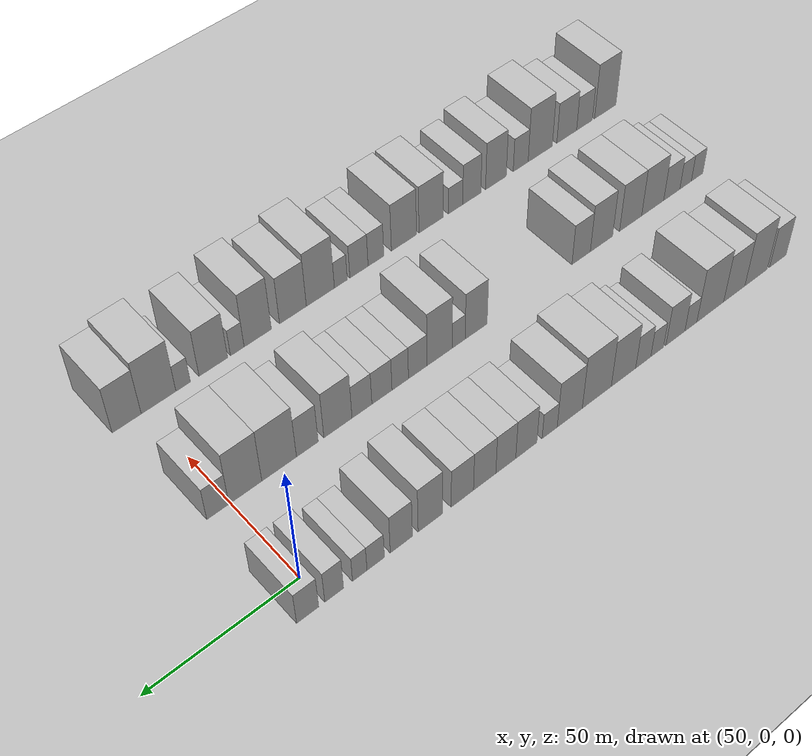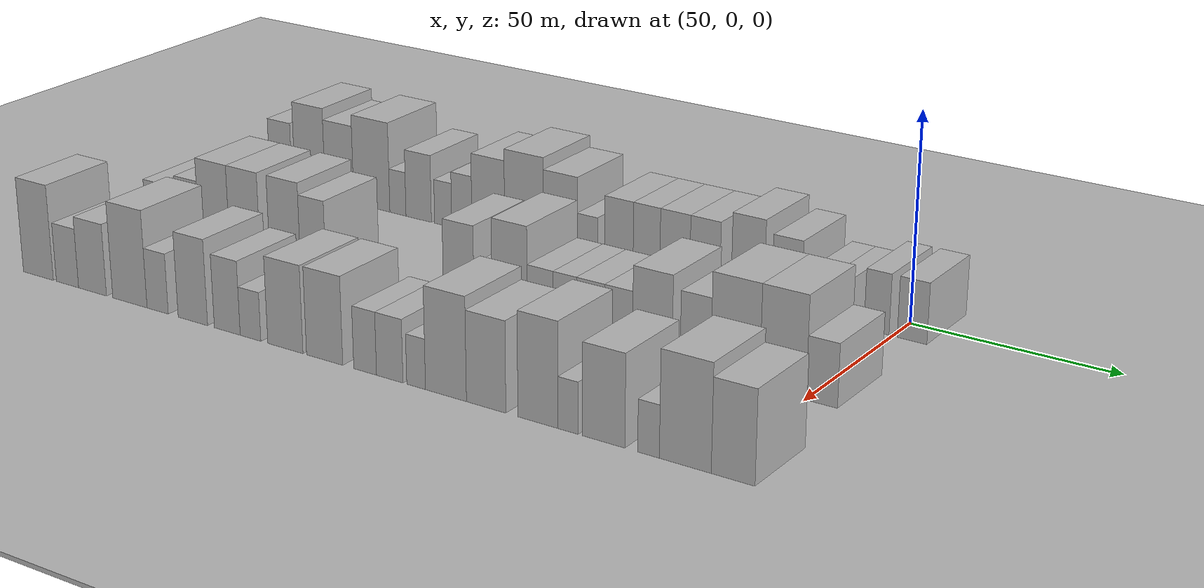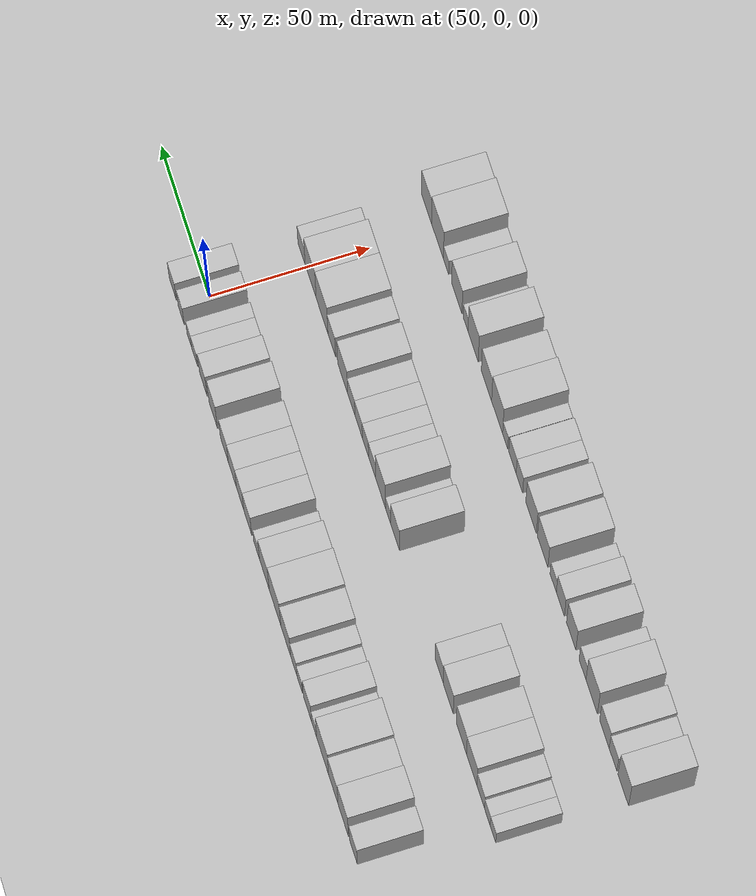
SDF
<sdf version="1.6">
 <world name="default">
  <include><name>ground_plane_1</name><uri>model://HANNAS_ground_plane</uri></include>
  <include>
   <name>ground_plane_2</name>
   <uri>model://HANNAS_ground_plane</uri>
   <pose>100 0 0  0 0 0</pose>
  </include>
  <model name="building_19">
   <static>1</static>
   <pose>50.0000 -175.2739 0 0.000000 0.000000 0.000000</pose>
   <link name="link">
    <pose>0 0 9.00 0 0 0</pose>
    <collision name="collision"><geometry><box><size>20.0000 7.4967 18.0000</size></box></geometry></collision>
    <visual name="visual">
     <cast_shadows>0</cast_shadows>
     <geometry><box><size>20.0000 7.4967 18.0000</size></box></geometry>
     <material>
      <script>
       <uri>model://HANNAS_wall/materials/scripts</uri>
       <uri>model://HANNAS_wall/materials/textures</uri>
       <name>vrc/HANNAS_wall</name>
      </script>
     </material>
    </visual>
   </link>
  </model>
  <model name="building_20">
   <static>1</static>
   <pose>50.0000 -165.5309 0 0.000000 0.000000 0.000000</pose>
   <link name="link">
    <pose>0 0 12.00 0 0 0</pose>
    <collision name="collision"><geometry><box><size>20.0000 9.9893 24.0000</size></box></geometry></collision>
    <visual name="visual">
     <cast_shadows>0</cast_shadows>
     <geometry><box><size>20.0000 9.9893 24.0000</size></box></geometry>
     <material>
      <script>
       <uri>model://HANNAS_wall/materials/scripts</uri>
       <uri>model://HANNAS_wall/materials/textures</uri>
       <name>vrc/HANNAS_wall</name>
      </script>
     </material>
    </visual>
   </link>
  </model>
  <model name="building_21">
   <static>1</static>
   <pose>50.0000 -155.8744 0 0.000000 0.000000 0.000000</pose>
   <link name="link">
    <pose>0 0 10.50 0 0 0</pose>
    <collision name="collision"><geometry><box><size>20.0000 9.3238 21.0000</size></box></geometry></collision>
    <visual name="visual">
     <cast_shadows>0</cast_shadows>
     <geometry><box><size>20.0000 9.3238 21.0000</size></box></geometry>
     <material>
      <script>
       <uri>model://HANNAS_wall/materials/scripts</uri>
       <uri>model://HANNAS_wall/materials/textures</uri>
       <name>vrc/HANNAS_wall</name>
      </script>
     </material>
    </visual>
   </link>
  </model>
  <model name="building_22">
   <static>1</static>
   <pose>50.0000 -145.4319 0 0.000000 0.000000 0.000000</pose>
   <link name="link">
    <pose>0 0 12.00 0 0 0</pose>
    <collision name="collision"><geometry><box><size>20.0000 11.5612 24.0000</size></box></geometry></collision>
    <visual name="visual">
     <cast_shadows>0</cast_shadows>
     <geometry><box><size>20.0000 11.5612 24.0000</size></box></geometry>
     <material>
      <script>
       <uri>model://HANNAS_wall/materials/scripts</uri>
       <uri>model://HANNAS_wall/materials/textures</uri>
       <name>vrc/HANNAS_wall</name>
      </script>
     </material>
    </visual>
   </link>
  </model>
  <model name="building_23">
   <static>1</static>
   <pose>50.0000 -137.0996 0 0.000000 0.000000 0.000000</pose>
   <link name="link">
    <pose>0 0 6.00 0 0 0</pose>
    <collision name="collision"><geometry><box><size>20.0000 5.1034 12.0000</size></box></geometry></collision>
    <visual name="visual">
     <cast_shadows>0</cast_shadows>
     <geometry><box><size>20.0000 5.1034 12.0000</size></box></geometry>
     <material>
      <script>
       <uri>model://HANNAS_wall/materials/scripts</uri>
       <uri>model://HANNAS_wall/materials/textures</uri>
       <name>vrc/HANNAS_wall</name>
      </script>
     </material>
    </visual>
   </link>
  </model>
  <model name="building_24">
   <static>1</static>
   <pose>50.0000 -130.5739 0 0.000000 0.000000 0.000000</pose>
   <link name="link">
    <pose>0 0 9.00 0 0 0</pose>
    <collision name="collision"><geometry><box><size>20.0000 7.9480 18.0000</size></box></geometry></collision>
    <visual name="visual">
     <cast_shadows>0</cast_shadows>
     <geometry><box><size>20.0000 7.9480 18.0000</size></box></geometry>
     <material>
      <script>
       <uri>model://HANNAS_wall/materials/scripts</uri>
       <uri>model://HANNAS_wall/materials/textures</uri>
       <name>vrc/HANNAS_wall</name>
      </script>
     </material>
    </visual>
   </link>
  </model>
  <model name="building_25">
   <static>1</static>
   <pose>50.0000 -122.9616 0 0.000000 0.000000 0.000000</pose>
   <link name="link">
    <pose>0 0 6.00 0 0 0</pose>
    <collision name="collision"><geometry><box><size>20.0000 5.2764 12.0000</size></box></geometry></collision>
    <visual name="visual">
     <cast_shadows>0</cast_shadows>
     <geometry><box><size>20.0000 5.2764 12.0000</size></box></geometry>
     <material>
      <script>
       <uri>model://HANNAS_wall/materials/scripts</uri>
       <uri>model://HANNAS_wall/materials/textures</uri>
       <name>vrc/HANNAS_wall</name>
      </script>
     </material>
    </visual>
   </link>
  </model>
  <model name="building_26">
   <static>1</static>
   <pose>50.0000 -117.2338 0 0.000000 0.000000 0.000000</pose>
   <link name="link">
    <pose>0 0 7.50 0 0 0</pose>
    <collision name="collision"><geometry><box><size>20.0000 6.1794 15.0000</size></box></geometry></collision>
    <visual name="visual">
     <cast_shadows>0</cast_shadows>
     <geometry><box><size>20.0000 6.1794 15.0000</size></box></geometry>
     <material>
      <script>
       <uri>model://HANNAS_wall/materials/scripts</uri>
       <uri>model://HANNAS_wall/materials/textures</uri>
       <name>vrc/HANNAS_wall</name>
      </script>
     </material>
    </visual>
   </link>
  </model>
  <model name="building_27">
   <static>1</static>
   <pose>50.0000 -109.2089 0 0.000000 0.000000 0.000000</pose>
   <link name="link">
    <pose>0 0 10.50 0 0 0</pose>
    <collision name="collision"><geometry><box><size>20.0000 9.8703 21.0000</size></box></geometry></collision>
    <visual name="visual">
     <cast_shadows>0</cast_shadows>
     <geometry><box><size>20.0000 9.8703 21.0000</size></box></geometry>
     <material>
      <script>
       <uri>model://HANNAS_wall/materials/scripts</uri>
       <uri>model://HANNAS_wall/materials/textures</uri>
       <name>vrc/HANNAS_wall</name>
      </script>
     </material>
    </visual>
   </link>
  </model>
  <model name="building_28">
   <static>1</static>
   <pose>50.0000 -98.5389 0 0.000000 0.000000 0.000000</pose>
   <link name="link">
    <pose>0 0 12.00 0 0 0</pose>
    <collision name="collision"><geometry><box><size>20.0000 11.4696 24.0000</size></box></geometry></collision>
    <visual name="visual">
     <cast_shadows>0</cast_shadows>
     <geometry><box><size>20.0000 11.4696 24.0000</size></box></geometry>
     <material>
      <script>
       <uri>model://HANNAS_wall/materials/scripts</uri>
       <uri>model://HANNAS_wall/materials/textures</uri>
       <name>vrc/HANNAS_wall</name>
      </script>
     </material>
    </visual>
   </link>
  </model>
  <model name="building_29">
   <static>1</static>
   <pose>50.0000 -87.9355 0 0.000000 0.000000 0.000000</pose>
   <link name="link">
    <pose>0 0 10.50 0 0 0</pose>
    <collision name="collision"><geometry><box><size>20.0000 9.7372 21.0000</size></box></geometry></collision>
    <visual name="visual">
     <cast_shadows>0</cast_shadows>
     <geometry><box><size>20.0000 9.7372 21.0000</size></box></geometry>
     <material>
      <script>
       <uri>model://HANNAS_wall/materials/scripts</uri>
       <uri>model://HANNAS_wall/materials/textures</uri>
       <name>vrc/HANNAS_wall</name>
      </script>
     </material>
    </visual>
   </link>
  </model>
  <model name="building_30">
   <static>1</static>
   <pose>50.0000 -80.1700 0 0.000000 0.000000 0.000000</pose>
   <link name="link">
    <pose>0 0 6.00 0 0 0</pose>
    <collision name="collision"><geometry><box><size>20.0000 5.7939 12.0000</size></box></geometry></collision>
    <visual name="visual">
     <cast_shadows>0</cast_shadows>
     <geometry><box><size>20.0000 5.7939 12.0000</size></box></geometry>
     <material>
      <script>
       <uri>model://HANNAS_wall/materials/scripts</uri>
       <uri>model://HANNAS_wall/materials/textures</uri>
       <name>vrc/HANNAS_wall</name>
      </script>
     </material>
    </visual>
   </link>
  </model>
  <model name="building_31">
   <static>1</static>
   <pose>50.0000 -71.2959 0 0.000000 0.000000 0.000000</pose>
   <link name="link">
    <pose>0 0 9.00 0 0 0</pose>
    <collision name="collision"><geometry><box><size>20.0000 7.9543 18.0000</size></box></geometry></collision>
    <visual name="visual">
     <cast_shadows>0</cast_shadows>
     <geometry><box><size>20.0000 7.9543 18.0000</size></box></geometry>
     <material>
      <script>
       <uri>model://HANNAS_wall/materials/scripts</uri>
       <uri>model://HANNAS_wall/materials/textures</uri>
       <name>vrc/HANNAS_wall</name>
      </script>
     </material>
    </visual>
   </link>
  </model>
  <model name="building_32">
   <static>1</static>
   <pose>50.0000 -63.6211 0 0.000000 0.000000 0.000000</pose>
   <link name="link">
    <pose>0 0 9.00 0 0 0</pose>
    <collision name="collision"><geometry><box><size>20.0000 7.3951 18.0000</size></box></geometry></collision>
    <visual name="visual">
     <cast_shadows>0</cast_shadows>
     <geometry><box><size>20.0000 7.3951 18.0000</size></box></geometry>
     <material>
      <script>
       <uri>model://HANNAS_wall/materials/scripts</uri>
       <uri>model://HANNAS_wall/materials/textures</uri>
       <name>vrc/HANNAS_wall</name>
      </script>
     </material>
    </visual>
   </link>
  </model>
  <model name="building_33">
   <static>1</static>
   <pose>50.0000 -55.8472 0 0.000000 0.000000 0.000000</pose>
   <link name="link">
    <pose>0 0 9.00 0 0 0</pose>
    <collision name="collision"><geometry><box><size>20.0000 8.1526 18.0000</size></box></geometry></collision>
    <visual name="visual">
     <cast_shadows>0</cast_shadows>
     <geometry><box><size>20.0000 8.1526 18.0000</size></box></geometry>
     <material>
      <script>
       <uri>model://HANNAS_wall/materials/scripts</uri>
       <uri>model://HANNAS_wall/materials/textures</uri>
       <name>vrc/HANNAS_wall</name>
      </script>
     </material>
    </visual>
   </link>
  </model>
  <model name="building_34">
   <static>1</static>
   <pose>50.0000 -47.7403 0 0.000000 0.000000 0.000000</pose>
   <link name="link">
    <pose>0 0 9.00 0 0 0</pose>
    <collision name="collision"><geometry><box><size>20.0000 8.0612 18.0000</size></box></geometry></collision>
    <visual name="visual">
     <cast_shadows>0</cast_shadows>
     <geometry><box><size>20.0000 8.0612 18.0000</size></box></geometry>
     <material>
      <script>
       <uri>model://HANNAS_wall/materials/scripts</uri>
       <uri>model://HANNAS_wall/materials/textures</uri>
       <name>vrc/HANNAS_wall</name>
      </script>
     </material>
    </visual>
   </link>
  </model>
  <model name="building_35">
   <static>1</static>
   <pose>50.0000 -36.3752 0 0.000000 0.000000 0.000000</pose>
   <link name="link">
    <pose>0 0 10.50 0 0 0</pose>
    <collision name="collision"><geometry><box><size>20.0000 8.6689 21.0000</size></box></geometry></collision>
    <visual name="visual">
     <cast_shadows>0</cast_shadows>
     <geometry><box><size>20.0000 8.6689 21.0000</size></box></geometry>
     <material>
      <script>
       <uri>model://HANNAS_wall/materials/scripts</uri>
       <uri>model://HANNAS_wall/materials/textures</uri>
       <name>vrc/HANNAS_wall</name>
      </script>
     </material>
    </visual>
   </link>
  </model>
  <model name="building_36">
   <static>1</static>
   <pose>50.0000 -26.2224 0 0.000000 0.000000 0.000000</pose>
   <link name="link">
    <pose>0 0 9.00 0 0 0</pose>
    <collision name="collision"><geometry><box><size>20.0000 7.6368 18.0000</size></box></geometry></collision>
    <visual name="visual">
     <cast_shadows>0</cast_shadows>
     <geometry><box><size>20.0000 7.6368 18.0000</size></box></geometry>
     <material>
      <script>
       <uri>model://HANNAS_wall/materials/scripts</uri>
       <uri>model://HANNAS_wall/materials/textures</uri>
       <name>vrc/HANNAS_wall</name>
      </script>
     </material>
    </visual>
   </link>
  </model>
  <model name="building_37">
   <static>1</static>
   <pose>50.0000 -17.4425 0 0.000000 0.000000 0.000000</pose>
   <link name="link">
    <pose>0 0 6.00 0 0 0</pose>
    <collision name="collision"><geometry><box><size>20.0000 5.9229 12.0000</size></box></geometry></collision>
    <visual name="visual">
     <cast_shadows>0</cast_shadows>
     <geometry><box><size>20.0000 5.9229 12.0000</size></box></geometry>
     <material>
      <script>
       <uri>model://HANNAS_wall/materials/scripts</uri>
       <uri>model://HANNAS_wall/materials/textures</uri>
       <name>vrc/HANNAS_wall</name>
      </script>
     </material>
    </visual>
   </link>
  </model>
  <model name="building_38">
   <static>1</static>
   <pose>50.0000 -12.0507 0 0.000000 0.000000 0.000000</pose>
   <link name="link">
    <pose>0 0 6.00 0 0 0</pose>
    <collision name="collision"><geometry><box><size>20.0000 4.8607 12.0000</size></box></geometry></collision>
    <visual name="visual">
     <cast_shadows>0</cast_shadows>
     <geometry><box><size>20.0000 4.8607 12.0000</size></box></geometry>
     <material>
      <script>
       <uri>model://HANNAS_wall/materials/scripts</uri>
       <uri>model://HANNAS_wall/materials/textures</uri>
       <name>vrc/HANNAS_wall</name>
      </script>
     </material>
    </visual>
   </link>
  </model>
  <model name="building_39">
   <static>1</static>
   <pose>50.0000 -3.5310 0 0.000000 0.000000 0.000000</pose>
   <link name="link">
    <pose>0 0 7.50 0 0 0</pose>
    <collision name="collision"><geometry><box><size>20.0000 6.1787 15.0000</size></box></geometry></collision>
    <visual name="visual">
     <cast_shadows>0</cast_shadows>
     <geometry><box><size>20.0000 6.1787 15.0000</size></box></geometry>
     <material>
      <script>
       <uri>model://HANNAS_wall/materials/scripts</uri>
       <uri>model://HANNAS_wall/materials/textures</uri>
       <name>vrc/HANNAS_wall</name>
      </script>
     </material>
    </visual>
   </link>
  </model>
  <model name="building_40">
   <static>1</static>
   <pose>50.0000 5.1485 0 0.000000 0.000000 0.000000</pose>
   <link name="link">
    <pose>0 0 7.50 0 0 0</pose>
    <collision name="collision"><geometry><box><size>20.0000 7.1804 15.0000</size></box></geometry></collision>
    <visual name="visual">
     <cast_shadows>0</cast_shadows>
     <geometry><box><size>20.0000 7.1804 15.0000</size></box></geometry>
     <material>
      <script>
       <uri>model://HANNAS_wall/materials/scripts</uri>
       <uri>model://HANNAS_wall/materials/textures</uri>
       <name>vrc/HANNAS_wall</name>
      </script>
     </material>
    </visual>
   </link>
  </model>
  <model name="building_106">
   <static>1</static>
   <pose>90.0000 -182.4600 0 0.000000 0.000000 0.000000</pose>
   <link name="link">
    <pose>0 0 6.00 0 0 0</pose>
    <collision name="collision"><geometry><box><size>20.0000 5.2436 12.0000</size></box></geometry></collision>
    <visual name="visual">
     <cast_shadows>0</cast_shadows>
     <geometry><box><size>20.0000 5.2436 12.0000</size></box></geometry>
     <material>
      <script>
       <uri>model://HANNAS_wall/materials/scripts</uri>
       <uri>model://HANNAS_wall/materials/textures</uri>
       <name>vrc/HANNAS_wall</name>
      </script>
     </material>
    </visual>
   </link>
  </model>
  <model name="building_107">
   <static>1</static>
   <pose>90.0000 -177.2167 0 0.000000 0.000000 0.000000</pose>
   <link name="link">
    <pose>0 0 6.00 0 0 0</pose>
    <collision name="collision"><geometry><box><size>20.0000 5.2430 12.0000</size></box></geometry></collision>
    <visual name="visual">
     <cast_shadows>0</cast_shadows>
     <geometry><box><size>20.0000 5.2430 12.0000</size></box></geometry>
     <material>
      <script>
       <uri>model://HANNAS_wall/materials/scripts</uri>
       <uri>model://HANNAS_wall/materials/textures</uri>
       <name>vrc/HANNAS_wall</name>
      </script>
     </material>
    </visual>
   </link>
  </model>
  <model name="building_108">
   <static>1</static>
   <pose>90.0000 -170.9620 0 0.000000 0.000000 0.000000</pose>
   <link name="link">
    <pose>0 0 7.50 0 0 0</pose>
    <collision name="collision"><geometry><box><size>20.0000 7.2664 15.0000</size></box></geometry></collision>
    <visual name="visual">
     <cast_shadows>0</cast_shadows>
     <geometry><box><size>20.0000 7.2664 15.0000</size></box></geometry>
     <material>
      <script>
       <uri>model://HANNAS_wall/materials/scripts</uri>
       <uri>model://HANNAS_wall/materials/textures</uri>
       <name>vrc/HANNAS_wall</name>
      </script>
     </material>
    </visual>
   </link>
  </model>
  <model name="building_109">
   <static>1</static>
   <pose>90.0000 -162.4137 0 0.000000 0.000000 0.000000</pose>
   <link name="link">
    <pose>0 0 10.50 0 0 0</pose>
    <collision name="collision"><geometry><box><size>20.0000 9.8303 21.0000</size></box></geometry></collision>
    <visual name="visual">
     <cast_shadows>0</cast_shadows>
     <geometry><box><size>20.0000 9.8303 21.0000</size></box></geometry>
     <material>
      <script>
       <uri>model://HANNAS_wall/materials/scripts</uri>
       <uri>model://HANNAS_wall/materials/textures</uri>
       <name>vrc/HANNAS_wall</name>
      </script>
     </material>
    </visual>
   </link>
  </model>
  <model name="building_110">
   <static>1</static>
   <pose>90.0000 -152.6524 0 0.000000 0.000000 0.000000</pose>
   <link name="link">
    <pose>0 0 10.50 0 0 0</pose>
    <collision name="collision"><geometry><box><size>20.0000 9.6923 21.0000</size></box></geometry></collision>
    <visual name="visual">
     <cast_shadows>0</cast_shadows>
     <geometry><box><size>20.0000 9.6923 21.0000</size></box></geometry>
     <material>
      <script>
       <uri>model://HANNAS_wall/materials/scripts</uri>
       <uri>model://HANNAS_wall/materials/textures</uri>
       <name>vrc/HANNAS_wall</name>
      </script>
     </material>
    </visual>
   </link>
  </model>
  <model name="building_111">
   <static>1</static>
   <pose>90.0000 -140.0357 0 0.000000 0.000000 0.000000</pose>
   <link name="link">
    <pose>0 0 10.50 0 0 0</pose>
    <collision name="collision"><geometry><box><size>20.0000 9.5411 21.0000</size></box></geometry></collision>
    <visual name="visual">
     <cast_shadows>0</cast_shadows>
     <geometry><box><size>20.0000 9.5411 21.0000</size></box></geometry>
     <material>
      <script>
       <uri>model://HANNAS_wall/materials/scripts</uri>
       <uri>model://HANNAS_wall/materials/textures</uri>
       <name>vrc/HANNAS_wall</name>
      </script>
     </material>
    </visual>
   </link>
  </model>
  <model name="building_112">
   <static>1</static>
   <pose>90.0000 -131.3884 0 0.000000 0.000000 0.000000</pose>
   <link name="link">
    <pose>0 0 9.00 0 0 0</pose>
    <collision name="collision"><geometry><box><size>20.0000 7.7534 18.0000</size></box></geometry></collision>
    <visual name="visual">
     <cast_shadows>0</cast_shadows>
     <geometry><box><size>20.0000 7.7534 18.0000</size></box></geometry>
     <material>
      <script>
       <uri>model://HANNAS_wall/materials/scripts</uri>
       <uri>model://HANNAS_wall/materials/textures</uri>
       <name>vrc/HANNAS_wall</name>
      </script>
     </material>
    </visual>
   </link>
  </model>
  <model name="building_113">
   <static>1</static>
   <pose>90.0000 -88.6458 0 0.000000 0.000000 0.000000</pose>
   <link name="link">
    <pose>0 0 10.50 0 0 0</pose>
    <collision name="collision"><geometry><box><size>20.0000 8.5773 21.0000</size></box></geometry></collision>
    <visual name="visual">
     <cast_shadows>0</cast_shadows>
     <geometry><box><size>20.0000 8.5773 21.0000</size></box></geometry>
     <material>
      <script>
       <uri>model://HANNAS_wall/materials/scripts</uri>
       <uri>model://HANNAS_wall/materials/textures</uri>
       <name>vrc/HANNAS_wall</name>
      </script>
     </material>
    </visual>
   </link>
  </model>
  <model name="building_114">
   <static>1</static>
   <pose>90.0000 -81.8595 0 0.000000 0.000000 0.000000</pose>
   <link name="link">
    <pose>0 0 6.00 0 0 0</pose>
    <collision name="collision"><geometry><box><size>20.0000 4.9953 12.0000</size></box></geometry></collision>
    <visual name="visual">
     <cast_shadows>0</cast_shadows>
     <geometry><box><size>20.0000 4.9953 12.0000</size></box></geometry>
     <material>
      <script>
       <uri>model://HANNAS_wall/materials/scripts</uri>
       <uri>model://HANNAS_wall/materials/textures</uri>
       <name>vrc/HANNAS_wall</name>
      </script>
     </material>
    </visual>
   </link>
  </model>
  <model name="building_115">
   <static>1</static>
   <pose>90.0000 -74.5567 0 0.000000 0.000000 0.000000</pose>
   <link name="link">
    <pose>0 0 12.00 0 0 0</pose>
    <collision name="collision"><geometry><box><size>20.0000 9.6104 24.0000</size></box></geometry></collision>
    <visual name="visual">
     <cast_shadows>0</cast_shadows>
     <geometry><box><size>20.0000 9.6104 24.0000</size></box></geometry>
     <material>
      <script>
       <uri>model://HANNAS_wall/materials/scripts</uri>
       <uri>model://HANNAS_wall/materials/textures</uri>
       <name>vrc/HANNAS_wall</name>
      </script>
     </material>
    </visual>
   </link>
  </model>
  <model name="building_116">
   <static>1</static>
   <pose>90.0000 -66.2463 0 0.000000 0.000000 0.000000</pose>
   <link name="link">
    <pose>0 0 7.50 0 0 0</pose>
    <collision name="collision"><geometry><box><size>20.0000 7.0105 15.0000</size></box></geometry></collision>
    <visual name="visual">
     <cast_shadows>0</cast_shadows>
     <geometry><box><size>20.0000 7.0105 15.0000</size></box></geometry>
     <material>
      <script>
       <uri>model://HANNAS_wall/materials/scripts</uri>
       <uri>model://HANNAS_wall/materials/textures</uri>
       <name>vrc/HANNAS_wall</name>
      </script>
     </material>
    </visual>
   </link>
  </model>
  <model name="building_117">
   <static>1</static>
   <pose>90.0000 -59.6669 0 0.000000 0.000000 0.000000</pose>
   <link name="link">
    <pose>0 0 7.50 0 0 0</pose>
    <collision name="collision"><geometry><box><size>20.0000 6.1483 15.0000</size></box></geometry></collision>
    <visual name="visual">
     <cast_shadows>0</cast_shadows>
     <geometry><box><size>20.0000 6.1483 15.0000</size></box></geometry>
     <material>
      <script>
       <uri>model://HANNAS_wall/materials/scripts</uri>
       <uri>model://HANNAS_wall/materials/textures</uri>
       <name>vrc/HANNAS_wall</name>
      </script>
     </material>
    </visual>
   </link>
  </model>
  <model name="building_118">
   <static>1</static>
   <pose>90.0000 -52.8986 0 0.000000 0.000000 0.000000</pose>
   <link name="link">
    <pose>0 0 7.50 0 0 0</pose>
    <collision name="collision"><geometry><box><size>20.0000 7.3882 15.0000</size></box></geometry></collision>
    <visual name="visual">
     <cast_shadows>0</cast_shadows>
     <geometry><box><size>20.0000 7.3882 15.0000</size></box></geometry>
     <material>
      <script>
       <uri>model://HANNAS_wall/materials/scripts</uri>
       <uri>model://HANNAS_wall/materials/textures</uri>
       <name>vrc/HANNAS_wall</name>
      </script>
     </material>
    </visual>
   </link>
  </model>
  <model name="building_119">
   <static>1</static>
   <pose>90.0000 -45.6013 0 0.000000 0.000000 0.000000</pose>
   <link name="link">
    <pose>0 0 7.50 0 0 0</pose>
    <collision name="collision"><geometry><box><size>20.0000 7.2063 15.0000</size></box></geometry></collision>
    <visual name="visual">
     <cast_shadows>0</cast_shadows>
     <geometry><box><size>20.0000 7.2063 15.0000</size></box></geometry>
     <material>
      <script>
       <uri>model://HANNAS_wall/materials/scripts</uri>
       <uri>model://HANNAS_wall/materials/textures</uri>
       <name>vrc/HANNAS_wall</name>
      </script>
     </material>
    </visual>
   </link>
  </model>
  <model name="building_120">
   <static>1</static>
   <pose>90.0000 -36.9775 0 0.000000 0.000000 0.000000</pose>
   <link name="link">
    <pose>0 0 10.50 0 0 0</pose>
    <collision name="collision"><geometry><box><size>20.0000 10.0412 21.0000</size></box></geometry></collision>
    <visual name="visual">
     <cast_shadows>0</cast_shadows>
     <geometry><box><size>20.0000 10.0412 21.0000</size></box></geometry>
     <material>
      <script>
       <uri>model://HANNAS_wall/materials/scripts</uri>
       <uri>model://HANNAS_wall/materials/textures</uri>
       <name>vrc/HANNAS_wall</name>
      </script>
     </material>
    </visual>
   </link>
  </model>
  <model name="building_121">
   <static>1</static>
   <pose>90.0000 -26.1524 0 0.000000 0.000000 0.000000</pose>
   <link name="link">
    <pose>0 0 9.00 0 0 0</pose>
    <collision name="collision"><geometry><box><size>20.0000 7.6090 18.0000</size></box></geometry></collision>
    <visual name="visual">
     <cast_shadows>0</cast_shadows>
     <geometry><box><size>20.0000 7.6090 18.0000</size></box></geometry>
     <material>
      <script>
       <uri>model://HANNAS_wall/materials/scripts</uri>
       <uri>model://HANNAS_wall/materials/textures</uri>
       <name>vrc/HANNAS_wall</name>
      </script>
     </material>
    </visual>
   </link>
  </model>
  <model name="building_122">
   <static>1</static>
   <pose>90.0000 -16.4000 0 0.000000 0.000000 0.000000</pose>
   <link name="link">
    <pose>0 0 12.00 0 0 0</pose>
    <collision name="collision"><geometry><box><size>20.0000 11.8959 24.0000</size></box></geometry></collision>
    <visual name="visual">
     <cast_shadows>0</cast_shadows>
     <geometry><box><size>20.0000 11.8959 24.0000</size></box></geometry>
     <material>
      <script>
       <uri>model://HANNAS_wall/materials/scripts</uri>
       <uri>model://HANNAS_wall/materials/textures</uri>
       <name>vrc/HANNAS_wall</name>
      </script>
     </material>
    </visual>
   </link>
  </model>
  <model name="building_123">
   <static>1</static>
   <pose>90.0000 -4.9255 0 0.000000 0.000000 0.000000</pose>
   <link name="link">
    <pose>0 0 12.00 0 0 0</pose>
    <collision name="collision"><geometry><box><size>20.0000 11.0531 24.0000</size></box></geometry></collision>
    <visual name="visual">
     <cast_shadows>0</cast_shadows>
     <geometry><box><size>20.0000 11.0531 24.0000</size></box></geometry>
     <material>
      <script>
       <uri>model://HANNAS_wall/materials/scripts</uri>
       <uri>model://HANNAS_wall/materials/textures</uri>
       <name>vrc/HANNAS_wall</name>
      </script>
     </material>
    </visual>
   </link>
  </model>
  <model name="building_124">
   <static>1</static>
   <pose>90.0000 4.2738 0 0.000000 0.000000 0.000000</pose>
   <link name="link">
    <pose>0 0 7.50 0 0 0</pose>
    <collision name="collision"><geometry><box><size>20.0000 7.3455 15.0000</size></box></geometry></collision>
    <visual name="visual">
     <cast_shadows>0</cast_shadows>
     <geometry><box><size>20.0000 7.3455 15.0000</size></box></geometry>
     <material>
      <script>
       <uri>model://HANNAS_wall/materials/scripts</uri>
       <uri>model://HANNAS_wall/materials/textures</uri>
       <name>vrc/HANNAS_wall</name>
      </script>
     </material>
    </visual>
   </link>
  </model>
  <model name="building_186">
   <static>1</static>
   <pose>130.0000 -181.4020 0 0.000000 0.000000 0.000000</pose>
   <link name="link">
    <pose>0 0 12.00 0 0 0</pose>
    <collision name="collision"><geometry><box><size>20.0000 9.7981 24.0000</size></box></geometry></collision>
    <visual name="visual">
     <cast_shadows>0</cast_shadows>
     <geometry><box><size>20.0000 9.7981 24.0000</size></box></geometry>
     <material>
      <script>
       <uri>model://HANNAS_wall/materials/scripts</uri>
       <uri>model://HANNAS_wall/materials/textures</uri>
       <name>vrc/HANNAS_wall</name>
      </script>
     </material>
    </visual>
   </link>
  </model>
  <model name="building_187">
   <static>1</static>
   <pose>130.0000 -171.9213 0 0.000000 0.000000 0.000000</pose>
   <link name="link">
    <pose>0 0 7.50 0 0 0</pose>
    <collision name="collision"><geometry><box><size>20.0000 7.1634 15.0000</size></box></geometry></collision>
    <visual name="visual">
     <cast_shadows>0</cast_shadows>
     <geometry><box><size>20.0000 7.1634 15.0000</size></box></geometry>
     <material>
      <script>
       <uri>model://HANNAS_wall/materials/scripts</uri>
       <uri>model://HANNAS_wall/materials/textures</uri>
       <name>vrc/HANNAS_wall</name>
      </script>
     </material>
    </visual>
   </link>
  </model>
  <model name="building_188">
   <static>1</static>
   <pose>130.0000 -163.9119 0 0.000000 0.000000 0.000000</pose>
   <link name="link">
    <pose>0 0 9.00 0 0 0</pose>
    <collision name="collision"><geometry><box><size>20.0000 8.8554 18.0000</size></box></geometry></collision>
    <visual name="visual">
     <cast_shadows>0</cast_shadows>
     <geometry><box><size>20.0000 8.8554 18.0000</size></box></geometry>
     <material>
      <script>
       <uri>model://HANNAS_wall/materials/scripts</uri>
       <uri>model://HANNAS_wall/materials/textures</uri>
       <name>vrc/HANNAS_wall</name>
      </script>
     </material>
    </visual>
   </link>
  </model>
  <model name="building_189">
   <static>1</static>
   <pose>130.0000 -152.1585 0 0.000000 0.000000 0.000000</pose>
   <link name="link">
    <pose>0 0 12.00 0 0 0</pose>
    <collision name="collision"><geometry><box><size>20.0000 10.6512 24.0000</size></box></geometry></collision>
    <visual name="visual">
     <cast_shadows>0</cast_shadows>
     <geometry><box><size>20.0000 10.6512 24.0000</size></box></geometry>
     <material>
      <script>
       <uri>model://HANNAS_wall/materials/scripts</uri>
       <uri>model://HANNAS_wall/materials/textures</uri>
       <name>vrc/HANNAS_wall</name>
      </script>
     </material>
    </visual>
   </link>
  </model>
  <model name="building_190">
   <static>1</static>
   <pose>130.0000 -143.5944 0 0.000000 0.000000 0.000000</pose>
   <link name="link">
    <pose>0 0 7.50 0 0 0</pose>
    <collision name="collision"><geometry><box><size>20.0000 6.4771 15.0000</size></box></geometry></collision>
    <visual name="visual">
     <cast_shadows>0</cast_shadows>
     <geometry><box><size>20.0000 6.4771 15.0000</size></box></geometry>
     <material>
      <script>
       <uri>model://HANNAS_wall/materials/scripts</uri>
       <uri>model://HANNAS_wall/materials/textures</uri>
       <name>vrc/HANNAS_wall</name>
      </script>
     </material>
    </visual>
   </link>
  </model>
  <model name="building_191">
   <static>1</static>
   <pose>130.0000 -132.9481 0 0.000000 0.000000 0.000000</pose>
   <link name="link">
    <pose>0 0 10.50 0 0 0</pose>
    <collision name="collision"><geometry><box><size>20.0000 8.8155 21.0000</size></box></geometry></collision>
    <visual name="visual">
     <cast_shadows>0</cast_shadows>
     <geometry><box><size>20.0000 8.8155 21.0000</size></box></geometry>
     <material>
      <script>
       <uri>model://HANNAS_wall/materials/scripts</uri>
       <uri>model://HANNAS_wall/materials/textures</uri>
       <name>vrc/HANNAS_wall</name>
      </script>
     </material>
    </visual>
   </link>
  </model>
  <model name="building_192">
   <static>1</static>
   <pose>130.0000 -122.7516 0 0.000000 0.000000 0.000000</pose>
   <link name="link">
    <pose>0 0 9.00 0 0 0</pose>
    <collision name="collision"><geometry><box><size>20.0000 7.5774 18.0000</size></box></geometry></collision>
    <visual name="visual">
     <cast_shadows>0</cast_shadows>
     <geometry><box><size>20.0000 7.5774 18.0000</size></box></geometry>
     <material>
      <script>
       <uri>model://HANNAS_wall/materials/scripts</uri>
       <uri>model://HANNAS_wall/materials/textures</uri>
       <name>vrc/HANNAS_wall</name>
      </script>
     </material>
    </visual>
   </link>
  </model>
  <model name="building_193">
   <static>1</static>
   <pose>130.0000 -115.9778 0 0.000000 0.000000 0.000000</pose>
   <link name="link">
    <pose>0 0 6.00 0 0 0</pose>
    <collision name="collision"><geometry><box><size>20.0000 5.9703 12.0000</size></box></geometry></collision>
    <visual name="visual">
     <cast_shadows>0</cast_shadows>
     <geometry><box><size>20.0000 5.9703 12.0000</size></box></geometry>
     <material>
      <script>
       <uri>model://HANNAS_wall/materials/scripts</uri>
       <uri>model://HANNAS_wall/materials/textures</uri>
       <name>vrc/HANNAS_wall</name>
      </script>
     </material>
    </visual>
   </link>
  </model>
  <model name="building_194">
   <static>1</static>
   <pose>130.0000 -106.0076 0 0.000000 0.000000 0.000000</pose>
   <link name="link">
    <pose>0 0 10.50 0 0 0</pose>
    <collision name="collision"><geometry><box><size>20.0000 9.9701 21.0000</size></box></geometry></collision>
    <visual name="visual">
     <cast_shadows>0</cast_shadows>
     <geometry><box><size>20.0000 9.9701 21.0000</size></box></geometry>
     <material>
      <script>
       <uri>model://HANNAS_wall/materials/scripts</uri>
       <uri>model://HANNAS_wall/materials/textures</uri>
       <name>vrc/HANNAS_wall</name>
      </script>
     </material>
    </visual>
   </link>
  </model>
  <model name="building_195">
   <static>1</static>
   <pose>130.0000 -94.9979 0 0.000000 0.000000 0.000000</pose>
   <link name="link">
    <pose>0 0 10.50 0 0 0</pose>
    <collision name="collision"><geometry><box><size>20.0000 10.0493 21.0000</size></box></geometry></collision>
    <visual name="visual">
     <cast_shadows>0</cast_shadows>
     <geometry><box><size>20.0000 10.0493 21.0000</size></box></geometry>
     <material>
      <script>
       <uri>model://HANNAS_wall/materials/scripts</uri>
       <uri>model://HANNAS_wall/materials/textures</uri>
       <name>vrc/HANNAS_wall</name>
      </script>
     </material>
    </visual>
   </link>
  </model>
  <model name="building_196">
   <static>1</static>
   <pose>130.0000 -83.8843 0 0.000000 0.000000 0.000000</pose>
   <link name="link">
    <pose>0 0 7.50 0 0 0</pose>
    <collision name="collision"><geometry><box><size>20.0000 6.1779 15.0000</size></box></geometry></collision>
    <visual name="visual">
     <cast_shadows>0</cast_shadows>
     <geometry><box><size>20.0000 6.1779 15.0000</size></box></geometry>
     <material>
      <script>
       <uri>model://HANNAS_wall/materials/scripts</uri>
       <uri>model://HANNAS_wall/materials/textures</uri>
       <name>vrc/HANNAS_wall</name>
      </script>
     </material>
    </visual>
   </link>
  </model>
  <model name="building_197">
   <static>1</static>
   <pose>130.0000 -77.2608 0 0.000000 0.000000 0.000000</pose>
   <link name="link">
    <pose>0 0 7.50 0 0 0</pose>
    <collision name="collision"><geometry><box><size>20.0000 7.0691 15.0000</size></box></geometry></collision>
    <visual name="visual">
     <cast_shadows>0</cast_shadows>
     <geometry><box><size>20.0000 7.0691 15.0000</size></box></geometry>
     <material>
      <script>
       <uri>model://HANNAS_wall/materials/scripts</uri>
       <uri>model://HANNAS_wall/materials/textures</uri>
       <name>vrc/HANNAS_wall</name>
      </script>
     </material>
    </visual>
   </link>
  </model>
  <model name="building_198">
   <static>1</static>
   <pose>130.0000 -70.2595 0 0.000000 0.000000 0.000000</pose>
   <link name="link">
    <pose>0 0 6.00 0 0 0</pose>
    <collision name="collision"><geometry><box><size>20.0000 4.9335 12.0000</size></box></geometry></collision>
    <visual name="visual">
     <cast_shadows>0</cast_shadows>
     <geometry><box><size>20.0000 4.9335 12.0000</size></box></geometry>
     <material>
      <script>
       <uri>model://HANNAS_wall/materials/scripts</uri>
       <uri>model://HANNAS_wall/materials/textures</uri>
       <name>vrc/HANNAS_wall</name>
      </script>
     </material>
    </visual>
   </link>
  </model>
  <model name="building_199">
   <static>1</static>
   <pose>130.0000 -62.4896 0 0.000000 0.000000 0.000000</pose>
   <link name="link">
    <pose>0 0 12.00 0 0 0</pose>
    <collision name="collision"><geometry><box><size>20.0000 10.6064 24.0000</size></box></geometry></collision>
    <visual name="visual">
     <cast_shadows>0</cast_shadows>
     <geometry><box><size>20.0000 10.6064 24.0000</size></box></geometry>
     <material>
      <script>
       <uri>model://HANNAS_wall/materials/scripts</uri>
       <uri>model://HANNAS_wall/materials/textures</uri>
       <name>vrc/HANNAS_wall</name>
      </script>
     </material>
    </visual>
   </link>
  </model>
  <model name="building_200">
   <static>1</static>
   <pose>130.0000 -52.1946 0 0.000000 0.000000 0.000000</pose>
   <link name="link">
    <pose>0 0 10.50 0 0 0</pose>
    <collision name="collision"><geometry><box><size>20.0000 9.9835 21.0000</size></box></geometry></collision>
    <visual name="visual">
     <cast_shadows>0</cast_shadows>
     <geometry><box><size>20.0000 9.9835 21.0000</size></box></geometry>
     <material>
      <script>
       <uri>model://HANNAS_wall/materials/scripts</uri>
       <uri>model://HANNAS_wall/materials/textures</uri>
       <name>vrc/HANNAS_wall</name>
      </script>
     </material>
    </visual>
   </link>
  </model>
  <model name="building_201">
   <static>1</static>
   <pose>130.0000 -39.2530 0 0.000000 0.000000 0.000000</pose>
   <link name="link">
    <pose>0 0 12.00 0 0 0</pose>
    <collision name="collision"><geometry><box><size>20.0000 9.8997 24.0000</size></box></geometry></collision>
    <visual name="visual">
     <cast_shadows>0</cast_shadows>
     <geometry><box><size>20.0000 9.8997 24.0000</size></box></geometry>
     <material>
      <script>
       <uri>model://HANNAS_wall/materials/scripts</uri>
       <uri>model://HANNAS_wall/materials/textures</uri>
       <name>vrc/HANNAS_wall</name>
      </script>
     </material>
    </visual>
   </link>
  </model>
  <model name="building_202">
   <static>1</static>
   <pose>130.0000 -31.8542 0 0.000000 0.000000 0.000000</pose>
   <link name="link">
    <pose>0 0 6.00 0 0 0</pose>
    <collision name="collision"><geometry><box><size>20.0000 4.8981 12.0000</size></box></geometry></collision>
    <visual name="visual">
     <cast_shadows>0</cast_shadows>
     <geometry><box><size>20.0000 4.8981 12.0000</size></box></geometry>
     <material>
      <script>
       <uri>model://HANNAS_wall/materials/scripts</uri>
       <uri>model://HANNAS_wall/materials/textures</uri>
       <name>vrc/HANNAS_wall</name>
      </script>
     </material>
    </visual>
   </link>
  </model>
  <model name="building_203">
   <static>1</static>
   <pose>130.0000 -23.3504 0 0.000000 0.000000 0.000000</pose>
   <link name="link">
    <pose>0 0 10.50 0 0 0</pose>
    <collision name="collision"><geometry><box><size>20.0000 10.1096 21.0000</size></box></geometry></collision>
    <visual name="visual">
     <cast_shadows>0</cast_shadows>
     <geometry><box><size>20.0000 10.1096 21.0000</size></box></geometry>
     <material>
      <script>
       <uri>model://HANNAS_wall/materials/scripts</uri>
       <uri>model://HANNAS_wall/materials/textures</uri>
       <name>vrc/HANNAS_wall</name>
      </script>
     </material>
    </visual>
   </link>
  </model>
  <model name="building_204">
   <static>1</static>
   <pose>130.0000 -12.7780 0 0.000000 0.000000 0.000000</pose>
   <link name="link">
    <pose>0 0 6.00 0 0 0</pose>
    <collision name="collision"><geometry><box><size>20.0000 5.0352 12.0000</size></box></geometry></collision>
    <visual name="visual">
     <cast_shadows>0</cast_shadows>
     <geometry><box><size>20.0000 5.0352 12.0000</size></box></geometry>
     <material>
      <script>
       <uri>model://HANNAS_wall/materials/scripts</uri>
       <uri>model://HANNAS_wall/materials/textures</uri>
       <name>vrc/HANNAS_wall</name>
      </script>
     </material>
    </visual>
   </link>
  </model>
  <model name="building_205">
   <static>1</static>
   <pose>130.0000 -4.3458 0 0.000000 0.000000 0.000000</pose>
   <link name="link">
    <pose>0 0 12.00 0 0 0</pose>
    <collision name="collision"><geometry><box><size>20.0000 11.8291 24.0000</size></box></geometry></collision>
    <visual name="visual">
     <cast_shadows>0</cast_shadows>
     <geometry><box><size>20.0000 11.8291 24.0000</size></box></geometry>
     <material>
      <script>
       <uri>model://HANNAS_wall/materials/scripts</uri>
       <uri>model://HANNAS_wall/materials/textures</uri>
       <name>vrc/HANNAS_wall</name>
      </script>
     </material>
    </visual>
   </link>
  </model>
  <model name="building_206">
   <static>1</static>
   <pose>130.0000 6.4489 0 0.000000 0.000000 0.000000</pose>
   <link name="link">
    <pose>0 0 10.50 0 0 0</pose>
    <collision name="collision"><geometry><box><size>20.0000 9.7604 21.0000</size></box></geometry></collision>
    <visual name="visual">
     <cast_shadows>0</cast_shadows>
     <geometry><box><size>20.0000 9.7604 21.0000</size></box></geometry>
     <material>
      <script>
       <uri>model://HANNAS_wall/materials/scripts</uri>
       <uri>model://HANNAS_wall/materials/textures</uri>
       <name>vrc/HANNAS_wall</name>
      </script>
     </material>
    </visual>
   </link>
  </model>
 </world>
</sdf>
